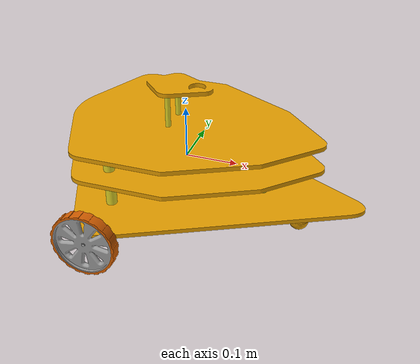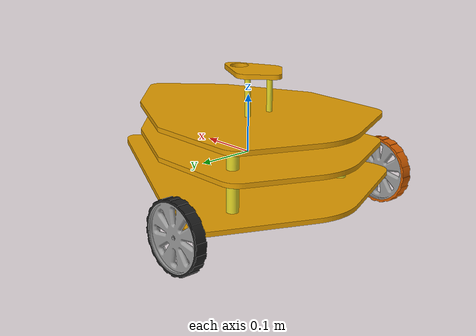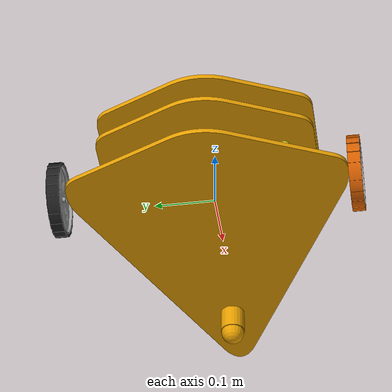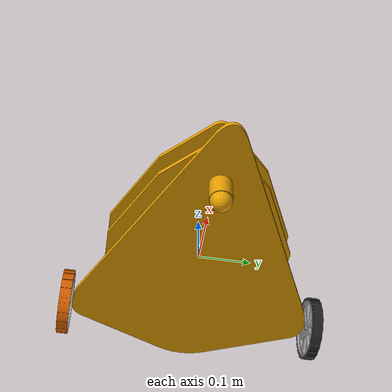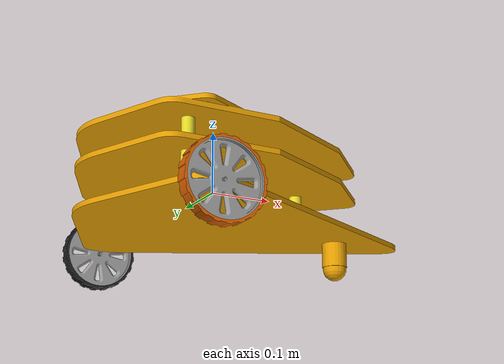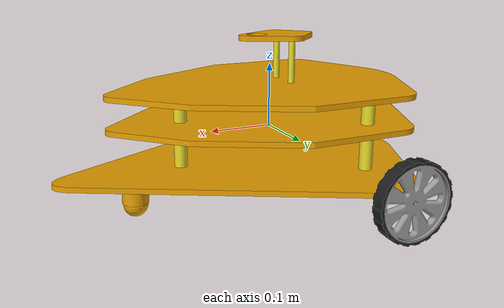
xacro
<?xml version="1.0" ?>

<robot name="mark" xmlns:xacro="http://www.ros.org/wiki/xacro">

<link name="base_link">

	<inertial name="base_inertia">
		<origin rpy="0 0 0" xyz="0 0 0"/>
    	<mass value="9"/>
    	<inertia ixx="0.000037" ixy="0.000001" ixz="0" iyy="0.000075" iyz="0" izz="0"/>
   	</inertial>

   <collision name="base_collision">
        <origin rpy="0 0 0" xyz="0 0 0.01"/>
    	<geometry>
       		<mesh filename="package://mark_description/mesh/base/base.dae"/>
     	</geometry>
   </collision>

	<visual name="base_visual">
    	<origin rpy="0 0 0" xyz="0 0 0.01"/>
     	<geometry>
       		<mesh filename="package://mark_description/mesh/base/base.dae"/>
     	</geometry>
    </visual>

  	<collision name="caster_base_collision">
     	<origin rpy=" 0 0 0" xyz="0.223 0 -0.09816"/>
     	<geometry>
       		<sphere radius="0.019"/>
     	</geometry>
     	<surface>
       	<friction>
         	<ode>
           		<mu>0</mu>
           		<mu2>0</mu2>
           		<slip1>1.0</slip1>
           		<slip2>1.0</slip2>
         	</ode>
       	</friction>
     	</surface>
   	</collision>

    <collision name="caster_wheel_collision">
    	<origin rpy=" 0 0 0" xyz="0.223 0 -0.075448"/>
    	<geometry>
    		<cylinder length="0.04" radius="0.02"/>
   		</geometry>
   		<surface>
   		<friction>
       		<ode>
       			<mu>0</mu>
       			<mu2>0</mu2>
       			<slip1>1.0</slip1>
       			<slip2>1.0</slip2>
      		</ode>
   		</friction>
	   	</surface>
   	</collision>

    <visual name="caster_base_visual">
    	<origin rpy=" 0 0 0" xyz="0.223 0 -0.075448"/>
     	<geometry>
       		<cylinder length="0.04" radius="0.02"/>
     	</geometry>
   	</visual>

   	<visual name="caster_wheel_visual">
     	<origin rpy=" 0 0 0" xyz="0.223 0 -0.09816"/>
     	<geometry>
       		<sphere radius="0.019"/>
     	</geometry>
   	</visual>

</link>

	 	<link name="pillers_link">

		<collision name="pillers_collision">
				<origin rpy="0 0 0" xyz="-0.099185 0 -0.05621"/>
				<geometry>
					<mesh filename="package://mark_description/mesh/base/pillers.dae"/>
				</geometry>
			</collision>

			<visual name="pillers_visual">
				<origin rpy="0 0 0" xyz="0 0 0"/>
				<geometry>
					<mesh filename="package://mark_description/mesh/base/pillers.dae"/>
				</geometry>
				<material name="Yellow"/>
			</visual>
		</link>

		<joint name="pillers_joint" type="fixed">
				<axis xyz="0 1 0"/>
				<parent link="base_link"/>
				<child link="pillers_link"/>
				<origin rpy="0 0 0" xyz="-0.099185 0 -0.05621"/>
			</joint>

<!--left wheel rim-->

<link name="left_rim_link">

	<inertial>
     	<origin rpy="-1.57075 0 0" xyz="0 0 0"/>
		<mass value="0.85"/>
		<inertia ixx="0.001" ixy="0" ixz="0" iyy="0.001" iyz="0" izz="0.001"/>
	</inertial>

	<visual>
        <origin rpy="-1.57075 0 0" xyz="0 0 0"/>
		<geometry>
        	<mesh filename="package://mark_description/mesh/wheel/wheel_rim.dae"/>
		</geometry>
	</visual>

	<collision>
		<origin rpy="-1.57075 0 0" xyz="0 0 0"/>
		<geometry>
			<cylinder length="0.02" radius="0.06"/>
		</geometry>
	</collision>

</link>

	<gazebo reference="left_rim_link">
		<material>Gazebo/Grey</material>
		<mu1>1.0</mu1>
		<mu2>1.0</mu2>
		<kp>1000000.0</kp>
		<kd>100.0</kd>
		<minDepth>0.001</minDepth>
		<maxVel>1.0</maxVel>
	</gazebo>

	<joint name="left_rim_joint" type="continuous">
		<axis xyz="0 1 0"/>
		<parent link="base_link"/>
		<child link="left_rim_link"/>
    	<origin rpy="0 0 0" xyz="-0.099185 0.23646 -0.059645"/>
	</joint>

<!--left wheel tire-->
<link name="left_tire_link">
	<visual>
		<origin rpy="-1.57075 0 0 " xyz="0 0 0"/>
		<geometry>
	        <mesh filename="package://mark_description/mesh/wheel/wheel_tire.dae"/>
		</geometry>
	</visual>

	<collision>
		<origin rpy="1.57075 0 0" xyz="0 0 0"/>
		<geometry>
			<cylinder length="0.001" radius="0.001"/>
		</geometry>
	</collision>

	<inertial>
		<origin xyz="0 0 0" rpy="0 0 0"/>
		<mass value="0.001"/>
		<inertia ixx="0.001" ixy="0.0" ixz="0.0" iyy="0.001" 	iyz="0.0" izz="0.001" />
	</inertial>

</link>

	<gazebo reference="left_tire_link">
		<material>Gazebo/Black</material>
        <mu1>1.0</mu1>
		<mu2>1.0</mu2>
		<kp>1000000.0</kp>
		<kd>100.0</kd>
		<minDepth>0.001</minDepth>
		<maxVel>1.0</maxVel>
	</gazebo>

	<joint name="left_tire_joint" type="continuous">
		<axis xyz="0 1 0"/>
		<parent link="left_rim_link"/>
		<child link="left_tire_link"/>
		<origin rpy="0 0 0" xyz="0.0 0.0 0.0"/>
	</joint>

<!-- right wheel rim -->

<link name="right_rim_link">

	<inertial>
   		<origin rpy="1.57075 0 0" xyz="0 0 0"/>
		<mass value="0.85"/>
		<inertia ixx="0.001" ixy="0" ixz="0" iyy="0.001" iyz="0" izz="0.001"/>
	</inertial>

	<visual>
       	<origin rpy="1.57075 0 0" xyz="0 0 0"/>
		<geometry>
       		<mesh filename="package://mark_description/mesh/wheel/wheel_rim.dae"/>
		</geometry>
	</visual>

	<collision>
       	<origin rpy="1.57075 0 0" xyz="0 0 0"/>
		<geometry>
			<cylinder length="0.02" radius="0.06"/>
		</geometry>
	</collision>

</link>

	<gazebo reference="right_rim_link">
		<material>Gazebo/Grey</material>
		<mu1>1.0</mu1>
		<mu2>1.0</mu2>
		<kp>1000000.0</kp>
		<kd>100.0</kd>
		<minDepth>0.001</minDepth>
		<maxVel>1.0</maxVel>
	</gazebo>

	<joint name="right_rim_joint" type="continuous">
		<axis xyz="0 1 0"/>
		<parent link="base_link"/>
		<child link="right_rim_link"/>
	    <origin rpy="0 0 0" xyz="-0.099185 -0.23646 -0.059645"/>
	</joint>

<!--right tire link-->

<link name="right_tire_link">
	<visual>
		<origin rpy="1.57075 0 0 " xyz="0 0 0"/>
		<geometry>
	        <mesh filename="package://mark_description/mesh/wheel/wheel_tire.dae"/>
		</geometry>
	</visual>

	<collision>
		<origin rpy="1.57075 0 0" xyz="0 0 0"/>
		<geometry>
			<cylinder length="0.001" radius="0.001"/>
		</geometry>
	</collision>

	<inertial>
		<origin xyz="0 0 0" rpy="0 0 0"/>
		<mass value="0.001"/>
		<inertia ixx="0.001" ixy="0.0" ixz="0.0" iyy="0.001" 	iyz="0.0" izz="0.001" />
	</inertial>

</link>

	<gazebo reference="caster_tire_link">
		<material>Gazebo/Black</material>
        <mu1>1.0</mu1>
		<mu2>1.0</mu2>
		<kp>1000000.0</kp>
		<kd>100.0</kd>
		<minDepth>0.001</minDepth>
		<maxVel>1.0</maxVel>
	</gazebo>

	<joint name="right_tire_joint" type="continuous">
		<axis xyz="0 1 0"/>
		<parent link="right_rim_link"/>
		<child link="right_tire_link"/>
		<origin rpy="0 0 0" xyz="0.0 0.0 0.0"/>
	</joint>

	<gazebo>
		<plugin filename="libgazebo_ros_diff_drive.so" name="differential_drive_controller">
			<legacyMode>false</legacyMode>
			<alwaysOn>true</alwaysOn>
			<updateRate>100</updateRate>
			<leftJoint>left_rim_joint</leftJoint>
			<rightJoint>right_rim_joint</rightJoint>
			<wheelSeparation>0.45</wheelSeparation>
			<wheelDiameter>0.12</wheelDiameter>
			<torque>0.5</torque>
			<commandTopic>cmd_vel</commandTopic>
			<odometryTopic>odom</odometryTopic>
			<odometryFrame>odom</odometryFrame>
			<publishWheelTF>true</publishWheelTF>
			<publishWheelJointState>true</publishWheelJointState>
			<robotBaseFrame>base_link</robotBaseFrame>
			<odometrySource>world</odometrySource>
			<publishTf>1</publishTf>
			<rosDebugLevel>na</rosDebugLevel>
			<publishOdomTF>true</publishOdomTF>
			<wheelAcceleration>0</wheelAcceleration>
			<wheelTorque>5</wheelTorque>
	</plugin>
	</gazebo>

</robot>
